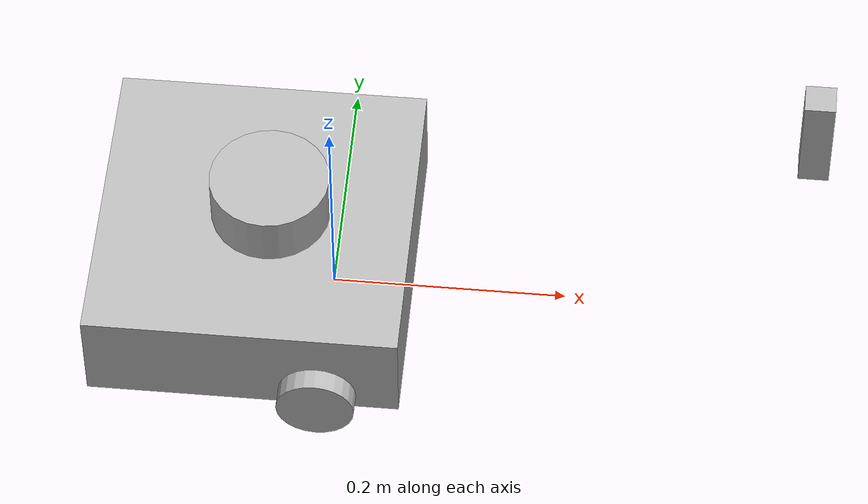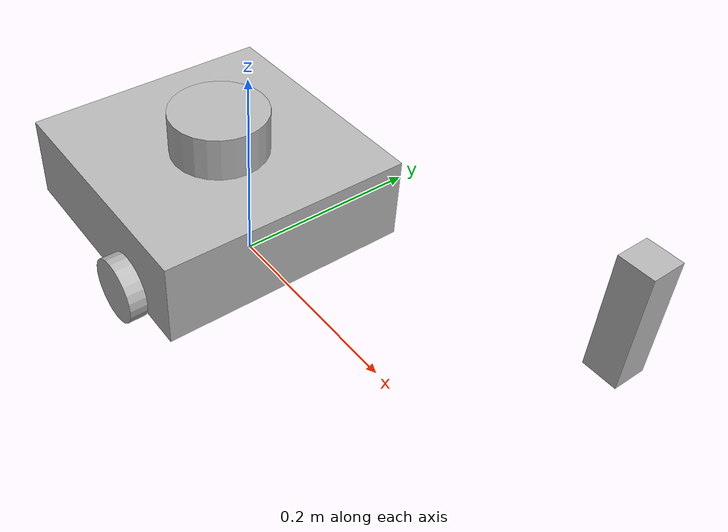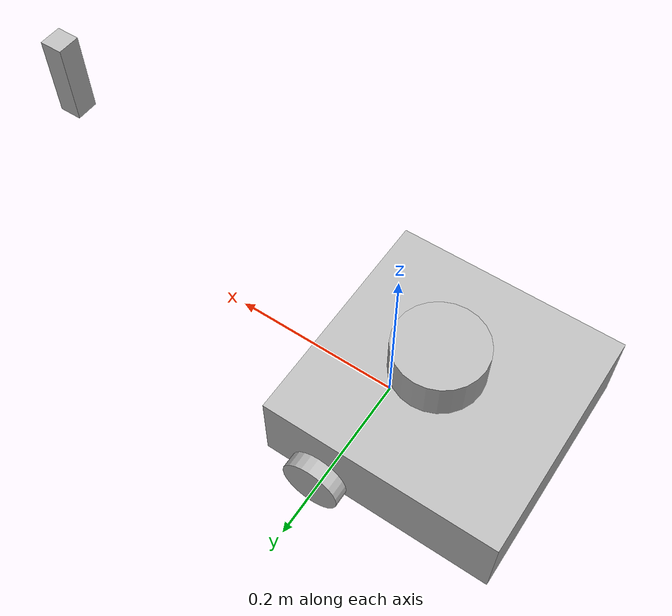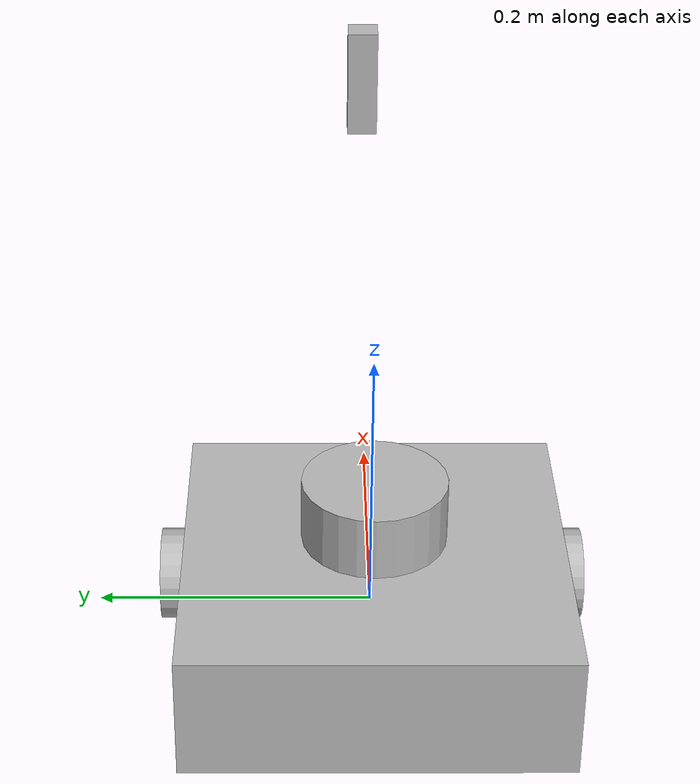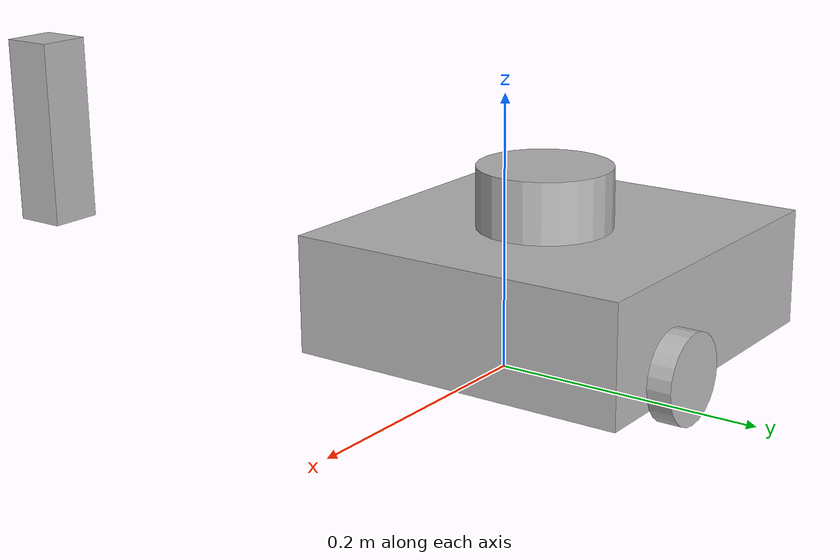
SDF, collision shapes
<?xml version="1.0" ?>
<sdf version="1.5">

  <model name="turtlebot3_waffle_pi_noisy">
  <pose>0.0 0.0 0.0 0.0 0.0 0.0</pose>

    <link name="base_footprint"/>

    <link name="base_link">

      <inertial>
        <pose>-0.064 0 0.048 0 0 0</pose>
        <inertia>
          <ixx>4.2111447e-02</ixx>
          <ixy>0</ixy>
          <ixz>0</ixz>
          <iyy>4.2111447e-02</iyy>
          <iyz>0</iyz>
          <izz>7.5254874e-02</izz>
        </inertia>
        <mass>1.3729096e+00</mass>
      </inertial>

      <collision name="base_collision">
        <pose>-0.064 0 0.048 0 0 0</pose>
        <geometry>
          <box>
            <size>0.265 0.265 0.089</size>
          </box>
        </geometry>
      </collision>

      <visual name="base_visual">
        <pose>-0.064 0 0 0 0 0</pose>
        <geometry>
          <mesh>
            <uri>model://turtlebot3_common/meshes/waffle_pi_base.dae</uri>
            <scale>0.001 0.001 0.001</scale>
          </mesh>
        </geometry>
      </visual>
    </link>

    <link name="realsense_link">
      <pose>0.4 0 0.25 0 0 0</pose>
      <visual name="realsense_link_visual">
        <pose>0 0 0 -1.57 0 -1.57</pose>
        <geometry>
          <mesh>
            <uri>model://chiconybot/meshes/d435.dae</uri>
          </mesh>
        </geometry>
      </visual>
      <collision name="realsense_link_collision">
        <pose>0 0 0 -1.57 0 -1.57</pose>
        <geometry>
          <box>
            <size>0.02505 0.090 0.025</size>
          </box>
        </geometry>
      </collision>
      <inertial>
        <pose>0 0 0 0 0 0</pose>
        <inertia>
          <ixx>0.001</ixx>
          <ixy>0.000</ixy>
          <ixz>0.000</ixz>
          <iyy>0.001</iyy>
          <iyz>0.000</iyz>
          <izz>0.001</izz>
        </inertia>
        <mass>0.564</mass>
      </inertial>

      <sensor name="cameradepth" type="depth">
        <camera name="camera">
          <horizontal_fov>1.57</horizontal_fov>
          <image>
            <width>1280</width>
            <height>720</height>
          </image>
          <clip>
            <near>0.1</near>
            <far>100</far>
          </clip>
          <noise>
            <type>gaussian</type>
            <mean>0.0</mean>
            <stddev>0.100</stddev>
          </noise>
        </camera>
        <always_on>1</always_on>
        <update_rate>30</update_rate>
        <visualize>0</visualize>
      </sensor>
      <sensor name="cameracolor" type="camera">
        <camera name="camera">
          <horizontal_fov>1.57</horizontal_fov>
          <image>
            <width>1280</width>
            <height>720</height>
            <format>RGB_INT8</format>
          </image>
          <clip>
            <near>0.1</near>
            <far>100</far>
          </clip>
          <noise>
            <type>gaussian</type>
            <mean>0.0</mean>
            <stddev>0.007</stddev>
          </noise>
        </camera>
        <always_on>1</always_on>
        <update_rate>30</update_rate>
        <visualize>1</visualize>
      </sensor>
      <sensor name="cameraired1" type="camera">
        <camera name="camera">
          <horizontal_fov>1.57</horizontal_fov>
          <image>
            <width>1280</width>
            <height>720</height>
            <format>L_INT8</format>
          </image>
          <clip>
            <near>0.1</near>
            <far>100</far>
          </clip>
          <noise>
            <type>gaussian</type>
            <mean>0.0</mean>
            <stddev>0.05</stddev>
          </noise>
        </camera>
        <always_on>1</always_on>
        <update_rate>1</update_rate>
        <visualize>0</visualize>
      </sensor>
      <sensor name="cameraired2" type="camera">
        <camera name="camera">
          <horizontal_fov>1.57</horizontal_fov>
          <image>
            <width>1280</width>
            <height>720</height>
            <format>L_INT8</format>
          </image>
          <clip>
            <near>0.1</near>
            <far>100</far>
          </clip>
          <noise>
            <type>gaussian</type>
            <mean>0.0</mean>
            <stddev>0.05</stddev>
          </noise>
        </camera>
        <always_on>1</always_on>
        <update_rate>1</update_rate>
        <visualize>0</visualize>
      </sensor>
    </link>

    <joint name="realsense_joint" type="fixed">
      <parent>base_link</parent>
      <child>realsense_link</child>
      <pose>0.4 0 0.4 0 0 0</pose>
    </joint>

    <plugin name="camera" filename="librealsense_gazebo_plugin.so">
      <prefix>camera</prefix>
      <depthUpdateRate>30.0</depthUpdateRate>
      <colorUpdateRate>30.0</colorUpdateRate>
      <infraredUpdateRate>1.0</infraredUpdateRate>
      <depthTopicName>/camera/depth/image_rect_raw</depthTopicName>
      <depthCameraInfoTopicName>depth/camera_info</depthCameraInfoTopicName>
      <colorTopicName>/camera/color/image_rect_color</colorTopicName>
      <colorCameraInfoTopicName>color/camera_info</colorCameraInfoTopicName>
      <infrared1TopicName>infra1/image_raw</infrared1TopicName>
      <infrared1CameraInfoTopicName>infra1/camera_info</infrared1CameraInfoTopicName>
      <infrared2TopicName>infra2/image_raw</infrared2TopicName>
      <infrared2CameraInfoTopicName>infra2/camera_info</infrared2CameraInfoTopicName>
      <colorOpticalframeName>camera_color_optical_frame</colorOpticalframeName>
      <depthOpticalframeName>camera_depth_optical_frame</depthOpticalframeName>
      <infrared1OpticalframeName>camera_left_ir_optical_frame</infrared1OpticalframeName>
      <infrared2OpticalframeName>camera_right_ir_optical_frame</infrared2OpticalframeName>
      <rangeMinDepth>0.3</rangeMinDepth>
      <rangeMaxDepth>3.0</rangeMaxDepth>
      <pointCloud>true</pointCloud>
      <pointCloudTopicName>depth/color/points</pointCloudTopicName>
      <pointCloudCutoff>0.3</pointCloudCutoff>
    </plugin>
    <link name="imu_link">
      <sensor name="tb3_imu" type="imu">
        <always_on>true</always_on>
        <update_rate>200</update_rate>
        <imu>
          <angular_velocity>
            <x>
              <noise type="gaussian">
                <mean>0.0</mean>
                <stddev>0.1</stddev>
              </noise>
            </x>
            <y>
              <noise type="gaussian">
                <mean>0.0</mean>
                <stddev>0.1</stddev>
              </noise>
            </y>
            <z>
              <noise type="gaussian">
                <mean>0.0</mean>
                <stddev>0.1</stddev>
              </noise>
            </z>
          </angular_velocity>
          <linear_acceleration>
            <x>
              <noise type="gaussian">
                <mean>0.0</mean>
                <stddev>0.2</stddev>
              </noise>
            </x>
            <y>
              <noise type="gaussian">
                <mean>0.0</mean>
                <stddev>0.2</stddev>
              </noise>
            </y>
            <z>
              <noise type="gaussian">
                <mean>0.0</mean>
                <stddev>0.1</stddev>
              </noise>
            </z>
          </linear_acceleration>
        </imu>
        <plugin name="turtlebot3_imu" filename="libgazebo_ros_imu_sensor.so">
          <ros>
            <remapping>~/out:=imu</remapping>
          </ros>
        </plugin>
      </sensor>
    </link>

    <link name="base_scan">
      <inertial>
        <pose>-0.052 0 0.111 0 0 0</pose>
        <inertia>
          <ixx>0.001</ixx>
          <ixy>0.000</ixy>
          <ixz>0.000</ixz>
          <iyy>0.001</iyy>
          <iyz>0.000</iyz>
          <izz>0.001</izz>
        </inertia>
        <mass>0.114</mass>
      </inertial>

      <collision name="lidar_sensor_collision">
        <pose>-0.052 0 0.111 0 0 0</pose>
        <geometry>
          <cylinder>
            <radius>0.0508</radius>
            <length>0.055</length>
          </cylinder>
        </geometry>
      </collision>

      <visual name="lidar_sensor_visual">
        <pose>-0.064 0 0.121 0 0 0</pose>
        <geometry>
          <mesh>
            <uri>model://turtlebot3_common/meshes/lds.dae</uri>
            <scale>0.001 0.001 0.001</scale>
          </mesh>
        </geometry>
      </visual>

      <sensor name="hls_lfcd_lds" type="ray">
        <always_on>true</always_on>
        <visualize>true</visualize>
        <pose>-0.064 0 0.121 0 0 0</pose>
        <update_rate>5</update_rate>
        <ray>
          <scan>
            <horizontal>
              <samples>360</samples>
              <resolution>1.000000</resolution>
              <min_angle>0.000000</min_angle>
              <max_angle>6.280000</max_angle>
            </horizontal>
          </scan>
          <range>
            <min>0.120000</min>
            <max>3.5</max>
            <resolution>0.015000</resolution>
          </range>
          <noise>
            <type>gaussian</type>
            <mean>0.0</mean>
            <stddev>0.01</stddev>
          </noise>
        </ray>
        <plugin name="turtlebot3_laserscan" filename="libgazebo_ros_ray_sensor.so">
          <ros>
            <remapping>~/out:=scan</remapping>
          </ros>
          <output_type>sensor_msgs/LaserScan</output_type>
          <frame_name>base_scan</frame_name>
        </plugin>
      </sensor>
    </link>

    <link name="wheel_left_link">

      <inertial>
        <pose>0.0 0.144 0.023 -1.57 0 0</pose>
        <inertia>
          <ixx>1.8158194e-03</ixx>
          <ixy>-9.3392e-12</ixy>
          <ixz>1.04909e-11</ixz>
          <iyy>3.2922126e-03</iyy>
          <iyz>5.75694e-11</iyz>
          <izz>1.8158194e-03</izz>
        </inertia>
        <mass>2.8498940e-02</mass>
      </inertial>

      <collision name="wheel_left_collision">
        <pose>0.0 0.144 0.023 -1.57 0 0</pose>
        <geometry>
          <cylinder>
            <radius>0.033</radius>
            <length>0.018</length>
          </cylinder>
        </geometry>
        <surface>
          <!-- This friction pamareter don't contain reliable data!! -->
          <friction>
            <ode>
              <mu>100000</mu>
              <mu2>100000</mu2>
              <fdir1>0 0 0</fdir1>
              <slip1>0.0</slip1>
              <slip2>0.0</slip2>
            </ode>
          </friction>
          <contact>
            <ode>
              <soft_cfm>0</soft_cfm>
              <soft_erp>0.2</soft_erp>
              <kp>1e+5</kp>
              <kd>1</kd>
              <max_vel>0.01</max_vel>
              <min_depth>0.001</min_depth>
            </ode>
          </contact>
        </surface>
      </collision>

      <visual name="wheel_left_visual">
        <pose>0.0 0.144 0.023 0 0 0</pose>
        <geometry>
          <mesh>
            <uri>model://turtlebot3_common/meshes/tire.dae</uri>
            <scale>0.001 0.001 0.001</scale>
          </mesh>
        </geometry>
      </visual>
    </link>

    <link name="wheel_right_link">

      <inertial>
        <pose>0.0 -0.144 0.023 -1.57 0 0</pose>
        <inertia>
          <ixx>1.8158194e-03</ixx>
          <ixy>-9.3392e-12</ixy>
          <ixz>1.04909e-11</ixz>
          <iyy>3.2922126e-03</iyy>
          <iyz>5.75694e-11</iyz>
          <izz>1.8158194e-03</izz>
        </inertia>
        <mass>2.8498940e-02</mass>
      </inertial>

      <collision name="wheel_right_collision">
        <pose>0.0 -0.144 0.023 -1.57 0 0</pose>
        <geometry>
          <cylinder>
            <radius>0.033</radius>
            <length>0.018</length>
          </cylinder>
        </geometry>
        <surface>
          <!-- This friction pamareter don't contain reliable data!! -->
          <friction>
            <ode>
              <mu>100000</mu>
              <mu2>100000</mu2>
              <fdir1>0 0 0</fdir1>
              <slip1>0.0</slip1>
              <slip2>0.0</slip2>
            </ode>
          </friction>
          <contact>
            <ode>
              <soft_cfm>0</soft_cfm>
              <soft_erp>0.2</soft_erp>
              <kp>1e+5</kp>
              <kd>1</kd>
              <max_vel>0.01</max_vel>
              <min_depth>0.001</min_depth>
            </ode>
          </contact>
        </surface>
      </collision>

      <visual name="wheel_right_visual">
        <pose>0.0 -0.144 0.023 0 0 0</pose>
        <geometry>
          <mesh>
            <uri>model://turtlebot3_common/meshes/tire.dae</uri>
            <scale>0.001 0.001 0.001</scale>
          </mesh>
        </geometry>
      </visual>
    </link>

    <link name='caster_back_right_link'>
      <pose>-0.177 -0.064 -0.004 -1.57 0 0</pose>
      <inertial>
        <mass>0.001</mass>
        <inertia>
          <ixx>0.00001</ixx>
          <ixy>0.000</ixy>
          <ixz>0.000</ixz>
          <iyy>0.00001</iyy>
          <iyz>0.000</iyz>
          <izz>0.00001</izz>
        </inertia>
      </inertial>
      <collision name='collision'>
        <geometry>
          <sphere>
            <radius>0.005000</radius>
          </sphere>
        </geometry>
        <surface>
          <contact>
            <ode>
              <soft_cfm>0</soft_cfm>
              <soft_erp>0.2</soft_erp>
              <kp>1e+5</kp>
              <kd>1</kd>
              <max_vel>0.01</max_vel>
              <min_depth>0.001</min_depth>
            </ode>
          </contact>
        </surface>
      </collision>
    </link>

    <link name='caster_back_left_link'>
      <pose>-0.177 0.064 -0.004 -1.57 0 0</pose>
      <inertial>
        <mass>0.001</mass>
        <inertia>
          <ixx>0.00001</ixx>
          <ixy>0.000</ixy>
          <ixz>0.000</ixz>
          <iyy>0.00001</iyy>
          <iyz>0.000</iyz>
          <izz>0.00001</izz>
        </inertia>
      </inertial>
      <collision name='collision'>
        <geometry>
          <sphere>
            <radius>0.005000</radius>
          </sphere>
        </geometry>
        <surface>
          <contact>
            <ode>
              <soft_cfm>0</soft_cfm>
              <soft_erp>0.2</soft_erp>
              <kp>1e+5</kp>
              <kd>1</kd>
              <max_vel>0.01</max_vel>
              <min_depth>0.001</min_depth>
            </ode>
          </contact>
        </surface>
      </collision>
    </link>

    <link name="camera_link"/>

    <link name="camera_color_optical_frame">
      <inertial>
        <pose>0.076 0.0 0.093 0 0 0</pose>
        <inertia>
          <ixx>0.001</ixx>
          <ixy>0.000</ixy>
          <ixz>0.000</ixz>
          <iyy>0.001</iyy>
          <iyz>0.000</iyz>
          <izz>0.001</izz>
        </inertia>
        <mass>0.035</mass>
      </inertial>

      <pose>0.076 0.0 0.093 0 0 0</pose>
      <sensor name="camera" type="camera">
        <always_on>true</always_on>
        <visualize>true</visualize>
        <update_rate>30</update_rate>
        <camera name="picam">
          <horizontal_fov>1.085595</horizontal_fov>
          <image>
              <width>640</width>
              <height>480</height>
              <format>R8G8B8</format>
          </image>
          <clip>
              <near>0.03</near>
              <far>100</far>
          </clip>
          <noise>
            <type>gaussian</type>
            <mean>0.0</mean>
            <stddev>0.007</stddev>
          </noise>
        </camera>
          <plugin name="camera_driver" filename="libgazebo_ros_camera.so">
            <ros>
            </ros>
          </plugin>
      </sensor>
    </link>

    <joint name="base_joint" type="fixed">
      <parent>base_footprint</parent>
      <child>base_link</child>
      <pose>0.0 0.0 0.010 0 0 0</pose>
    </joint>

    <joint name="wheel_left_joint" type="revolute">
      <parent>base_link</parent>
      <child>wheel_left_link</child>
      <pose>0.0 0.144 0.023 -1.57 0 0</pose>
      <axis>
        <xyz>0 0 1</xyz>
      </axis>
    </joint>

    <joint name="wheel_right_joint" type="revolute">
      <parent>base_link</parent>
      <child>wheel_right_link</child>
      <pose>0.0 -0.144 0.023 -1.57 0 0</pose>
      <axis>
        <xyz>0 0 1</xyz>
      </axis>
    </joint>

    <joint name='caster_back_right_joint' type='ball'>
      <parent>base_link</parent>
      <child>caster_back_right_link</child>
    </joint>

    <joint name='caster_back_left_joint' type='ball'>
      <parent>base_link</parent>
      <child>caster_back_left_link</child>
    </joint>

    <joint name="imu_joint" type="fixed">
      <parent>base_link</parent>
      <child>imu_link</child>
      <pose>-0.032 0 0.068 0 0 0</pose>
      <axis>
        <xyz>0 0 1</xyz>
      </axis>
    </joint>

    <joint name="lidar_joint" type="fixed">
      <parent>base_link</parent>
      <child>base_scan</child>
      <pose>-0.064 0 0.121 0 0 0</pose>
      <axis>
        <xyz>0 0 1</xyz>
      </axis>
    </joint>

    <joint name="camera_joint" type="fixed">
      <parent>base_link</parent>
      <child>camera_link</child>
      <pose>0.073 -0.011 0.084 0 0 0</pose>
      <axis>
        <xyz>0 0 1</xyz>
      </axis>
    </joint>

    <joint name="camera_rgb_joint" type="fixed">
      <parent>camera_link</parent>
      <child>camera_color_optical_frame</child>
      <pose>0.003 0.011 0.009 0 0 0</pose>
      <axis>
        <xyz>0 0 1</xyz>
      </axis>
    </joint>

    <plugin name="turtlebot3_diff_drive" filename="libgazebo_ros_diff_drive.so">

      <ros>
      </ros>

      <update_rate>30</update_rate>

      <!-- wheels -->
      <left_joint>wheel_left_joint</left_joint>
      <right_joint>wheel_right_joint</right_joint>

      <!-- kinematics -->
      <wheel_separation>0.287</wheel_separation>
      <wheel_diameter>0.066</wheel_diameter>

      <!-- limits -->
      <max_wheel_torque>20</max_wheel_torque>
      <max_wheel_acceleration>1.0</max_wheel_acceleration>

      <command_topic>cmd_vel</command_topic>

      <!-- output -->
      <publish_odom>false</publish_odom>
      <publish_odom_tf>ftrue</publish_odom_tf>
      <publish_wheel_tf>false</publish_wheel_tf>

      <odometry_topic>odom</odometry_topic>
      <odometry_frame>odom</odometry_frame>
      <robot_base_frame>base_footprint</robot_base_frame>

    </plugin>

    <plugin name="turtlebot3_joint_state" filename="libgazebo_ros_joint_state_publisher.so">
      <ros>
        <remapping>~/out:=joint_states</remapping>
      </ros>
      <update_rate>30</update_rate>
      <joint_name>wheel_left_joint</joint_name>
      <joint_name>wheel_right_joint</joint_name>
    </plugin>

  </model>
</sdf>
